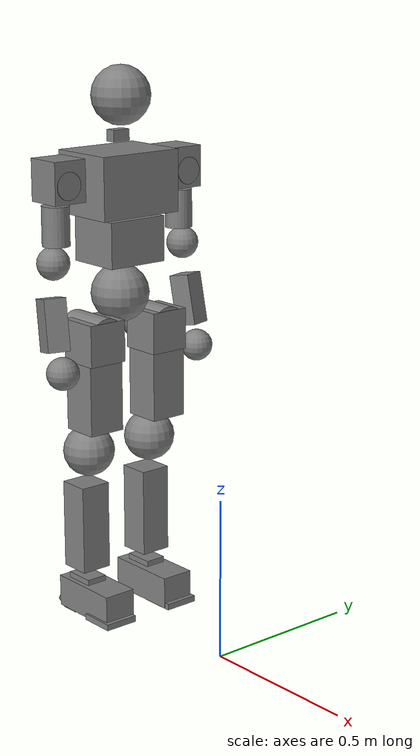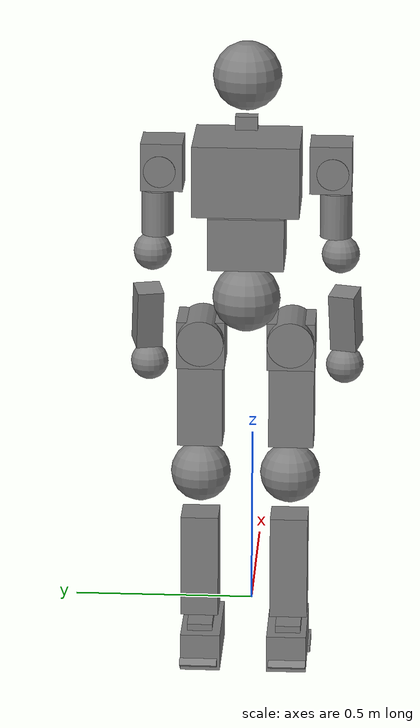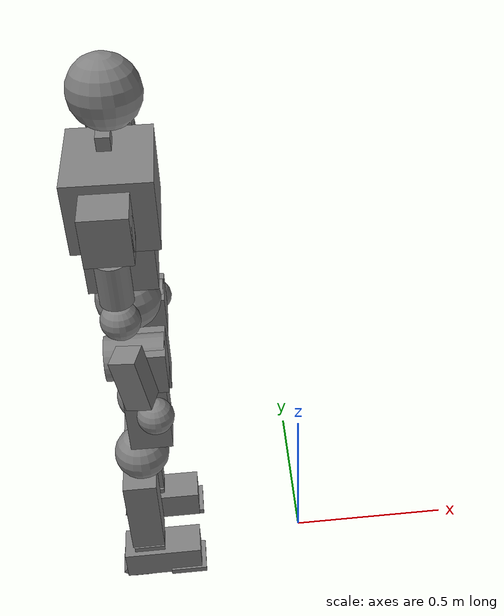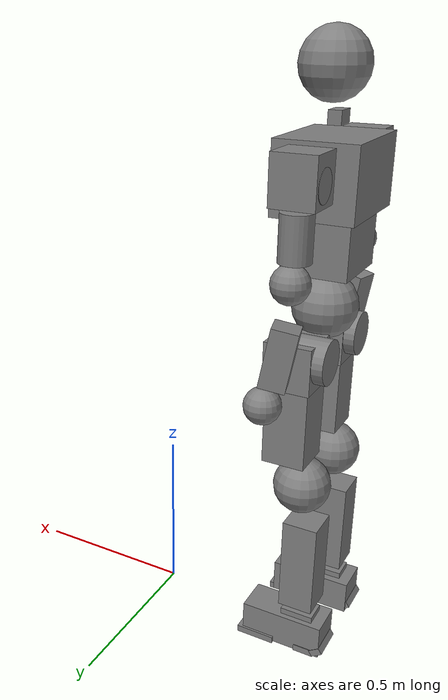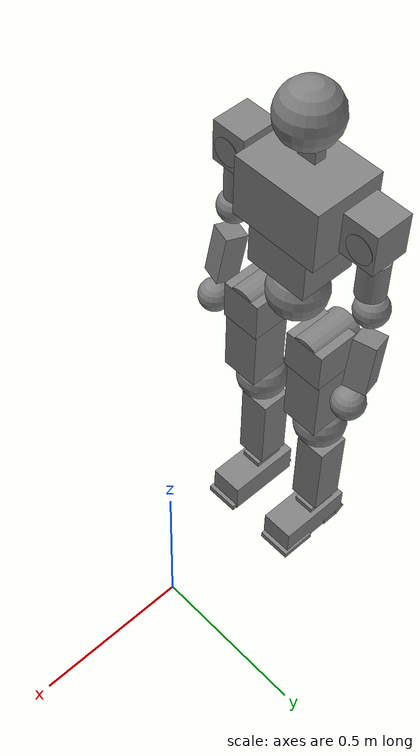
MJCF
<?xml version='1.0' encoding='utf-8'?>
<mujoco model="rek_LINK_BASE_3177">
  <compiler coordinate="local" />
  <option timestep="0.019999992913832199" gravity="0 0 -9.8100004196166992" impratio="1" magnetic="0 0 0" wind="0 0 0" density="0" viscosity="0" o_margin="0" o_solref="0.019999999552965164 1" o_solimp="0.89999997615814209 0.94999998807907104 0.0010000000474974513 0.5 2" integrator="implicitfast" cone="elliptic" jacobian="auto" solver="Newton" iterations="100" tolerance="9.9999999392252903e-09" noslip_iterations="0" noslip_tolerance="9.9999999747524271e-07" ccd_iterations="50" ccd_tolerance="9.9999999747524271e-07">
    <flag constraint="enable" equality="enable" frictionloss="enable" limit="enable" contact="enable" spring="enable" damper="enable" gravity="enable" clampctrl="enable" warmstart="enable" filterparent="enable" actuation="enable" refsafe="enable" override="disable" energy="disable" fwdinv="disable" multiccd="disable" />
  </option>
  <size memory="-1" />
  <custom />
  <worldbody>
    <body name="LINK_BASE_3177" pos="-0.4574199914932251 -0.0028800000436604023 1.0399999711662531" quat="1 0 0 0" gravcomp="0">
      <body name="LINK_HIP_PITCH_L_3427" pos="0 0.079177998006343842 0" quat="1 0 0 0" gravcomp="0">
        <body name="LINK_HIP_ROLL_L_3210" pos="0.0046620001085102558 0.040321998298168182 -0.10751999914646149" quat="1 0 0 0" gravcomp="0">
          <body name="LINK_HIP_YAW_L_3255" pos="0.0094616003334522247 0 -0.080512002110481262" quat="1 0 0 0" gravcomp="0">
            <body name="LINK_KNEE_PITCH_L_3453" pos="-0.037707000970840454 0 -0.28791999816894531" quat="1 0 0 0" gravcomp="0">
              <body name="LINK_ANKLE_PITCH_L_3480" pos="-0.0027167999651283026 0 -0.43867000937461853" quat="1 0 0 0" gravcomp="0">
                <body name="LINK_ANKLE_ROLL_L_3193" pos="0.0011073000496253371 0 -0.037928000092506409" quat="1 0 0 0" gravcomp="0">
                  <body name="LINK_FOOT_L_3022" pos="0 0 0" quat="1 0 0 0" gravcomp="0">
                    <inertial pos="0 0 0" quat="1 0 0 0" mass="0.0010000000474974513" diaginertia="9.999999960041972e-13 9.999999960041972e-13 9.999999960041972e-13" />
                    <geom name="mjgeom_authored_3241" density="0" type="box" size="0.057000000029802322 0.054999999701976776 0.0099999997764825821" pos="0.10000000149011612 0.0016599999507889152 -0.054000001400709152" quat="1 0 0 0" priority="0" contype="1" conaffinity="1" group="0" condim="3" solmix="1" solref="0.019999999552965164 1" solimp="0.89999997615814209 0.94999998807907104 0.0010000000474974513" margin="0" gap="0" friction="1 0.004999999888241291 9.9999997473787516e-05" fluidshape="none" fluidcoef="5 0.25 1.5 1 1" />
                    <geom name="mjgeom_authored_3395" density="0" type="box" size="0.029999999329447746 0.05000000074505806 0.0099999997764825821" pos="-0.05299999937415123 0.0016599999507889152 -0.054000001400709152" quat="1 0 0 0" priority="0" contype="1" conaffinity="1" group="0" condim="3" solmix="1" solref="0.019999999552965164 1" solimp="0.89999997615814209 0.94999998807907104 0.0010000000474974513" margin="0" gap="0" friction="1 0.004999999888241291 9.9999997473787516e-05" fluidshape="none" fluidcoef="5 0.25 1.5 1 1" />
                    <geom name="mjgeom_authored_2931" density="0" type="box" size="0.017999999225139614 0.05000000074505806 0.0099999997764825804" pos="-0.092000000178813934 0.0016599999507889152 -0.045000001788139343" quat="0.9563826269454565 0 0.29211687879495735 0" priority="0" contype="1" conaffinity="1" group="0" condim="3" solmix="1" solref="0.019999999552965164 1" solimp="0.89999997615814209 0.94999998807907104 0.0010000000474974513" margin="0" gap="0" friction="1 0.004999999888241291 9.9999997473787516e-05" fluidshape="none" fluidcoef="5 0.25 1.5 1 1" />
                  </body>
                  <inertial pos="-0.0012873800005763769 -0.0012063799658790231 -0.022955799475312233" quat="0.46213480009613783 0.54236178627193277 0.55963580806756663 0.42318185412489384" mass="1.4943900108337402" diaginertia="0.0070707299746572971 0.0069149001501500607 0.0020277400035411119" />
                  <joint name="joint__J05_ANKLE_ROLL_L_3431" type="hinge" pos="0 0 0" axis="1 0 0" armature="0.035462498664855957" springref="0" springdamper="0 0" damping="0" stiffness="0" solreflimit="0.019999999552965164 1" solimplimit="0.89999997615814209 0.94999998807907104 0.0010000000474974513 0.5 2" solreffriction="0.019999999552965164 1" solimpfriction="0.89999997615814209 0.94999998807907104 0.0010000000474974513 0.5 2" frictionloss="0" limited="true" margin="0" range="-20.001956939697266 9.9981136322021484" ref="0" />
                  <geom name="mjgeom_3424" density="0" type="box" size="0.12126479996368292 0.050415162695571794 0.053187139565125115" pos="0.021552437916398048 -0.0035329684615135193 -0.010564938187599182" quat="3.0908621139995618e-08 3.0908621139995618e-08 -0.70710678118654691 -0.70710678118654691" priority="0" contype="1" conaffinity="2" group="0" condim="3" solmix="1" solref="0.019999999552965164 1" solimp="0.89999997615814209 0.94999998807907104 0.0010000000474974513" margin="0" gap="0" friction="1 0.004999999888241291 9.9999997473787516e-05" fluidshape="none" fluidcoef="5 0.25 1.5 1 1" />
                </body>
                <inertial pos="-3.6779998481506482e-05 0 -0.0088703297078609467" quat="0.70702695848104491 -0.010624499096089172 -0.010624499096089172 0.70702695848104491" mass="0.1442209929227829" diaginertia="8.4929997683502734e-05 6.7876797402277589e-05 3.8243200833676383e-05" />
                <joint name="joint__J04_ANKLE_PITCH_L_3132" type="hinge" pos="0 0 0" axis="-2.2204460492503126e-16 1 0" armature="0.035462498664855957" springref="0" springdamper="0 0" damping="0" stiffness="0" solreflimit="0.019999999552965164 1" solimplimit="0.89999997615814209 0.94999998807907104 0.0010000000474974513 0.5 2" solreffriction="0.019999999552965164 1" solimpfriction="0.89999997615814209 0.94999998807907104 0.0010000000474974513 0.5 2" frictionloss="0" limited="true" margin="0" range="-39.000091552734375 39.000091552734375" ref="0" />
                <geom name="mjgeom_3280" density="0" type="box" size="0.04818098095711322 0.032786364317871637 0.033811354660429067" pos="-0.017856383696198463 -0.00027835369110107422 -0.012690454721450806" quat="3.0908621139995618e-08 3.0908621139995618e-08 -0.70710678118654691 -0.70710678118654691" priority="0" contype="1" conaffinity="2" group="0" condim="3" solmix="1" solref="0.019999999552965164 1" solimp="0.89999997615814209 0.94999998807907104 0.0010000000474974513" margin="0" gap="0" friction="1 0.004999999888241291 9.9999997473787516e-05" fluidshape="none" fluidcoef="5 0.25 1.5 1 1" />
              </body>
              <inertial pos="-0.019744899123907089 0.0013916200259700418 -0.21190699934959412" quat="0.47545387451589743 0.021036093661089075 0.016898896229069427 0.87932674432064351" mass="5.9950299263000488" diaginertia="0.085845403373241425 0.085651099681854248 0.011571500450372696" />
              <joint name="joint__J03_KNEE_PITCH_L_3448" type="hinge" pos="0 0 0" axis="-2.2204460492503126e-16 1 0" armature="0.2427264004945755" springref="0" springdamper="0 0" damping="0" stiffness="0" solreflimit="0.019999999552965164 1" solimplimit="0.89999997615814209 0.94999998807907104 0.0010000000474974513 0.5 2" solreffriction="0.019999999552965164 1" solimpfriction="0.89999997615814209 0.94999998807907104 0.0010000000474974513 0.5 2" frictionloss="0" limited="true" margin="0" range="-14.992415428161621 134.93156433105469" ref="0" />
              <geom name="mjgeom_authored_2981" density="0" type="sphere" size="0.079999998211860657" pos="0 0 0" quat="1 0 0 0" priority="0" contype="1" conaffinity="1" group="0" condim="3" solmix="1" solref="0.019999999552965164 1" solimp="0.89999997615814209 0.94999998807907104 0.0010000000474974513" margin="0" gap="0" friction="1 0.004999999888241291 9.9999997473787516e-05" fluidshape="none" fluidcoef="5 0.25 1.5 1 1" />
              <geom name="mjgeom_authored_3148" density="0" type="box" size="0.05000000074505806 0.05000000074505806 0.14000000059604645" pos="-0.019999999552965164 0 -0.25" quat="1 0 0 0" priority="0" contype="1" conaffinity="1" group="0" condim="3" solmix="1" solref="0.019999999552965164 1" solimp="0.89999997615814209 0.94999998807907104 0.0010000000474974513" margin="0" gap="0" friction="1 0.004999999888241291 9.9999997473787516e-05" fluidshape="none" fluidcoef="5 0.25 1.5 1 1" />
            </body>
            <inertial pos="-0.018298400565981865 0.0023612300865352154 -0.17634700238704681" quat="0.70917573331364325 0.058818773489761889 0.04620788409111385 0.7010527530878391" mass="7.1948199272155762" diaginertia="0.11565600335597992 0.11401999741792679 0.010776599869132042" />
            <joint name="joint__J02_HIP_YAW_L_3403" type="hinge" pos="0 0 0" axis="-2.2204460492503126e-16 0 1" armature="0.044873699545860291" springref="0" springdamper="0 0" damping="0" stiffness="0" solreflimit="0.019999999552965164 1" solimplimit="0.89999997615814209 0.94999998807907104 0.0010000000474974513 0.5 2" solreffriction="0.019999999552965164 1" solimpfriction="0.89999997615814209 0.94999998807907104 0.0010000000474974513 0.5 2" frictionloss="0" limited="true" margin="0" range="-81.500381469726562 206.39543151855469" ref="0" />
            <geom name="mjgeom_authored_3473" density="0" type="box" size="0.059999998658895493 0.059999998658895493 0.10999999940395355" pos="0 0.0020000000949949026 -0.10000000149011612" quat="1 0 0 0" priority="0" contype="1" conaffinity="1" group="0" condim="3" solmix="1" solref="0.019999999552965164 1" solimp="0.89999997615814209 0.94999998807907104 0.0010000000474974513" margin="0" gap="0" friction="1 0.004999999888241291 9.9999997473787516e-05" fluidshape="none" fluidcoef="5 0.25 1.5 1 1" />
          </body>
          <inertial pos="0.037530899047851562 4.9499999477120582e-06 -0.034845501184463501" quat="0.9541172936490564 -3.7655712020968035e-05 0.29943309203351076 -0.00010925703093716646" mass="0.85144197940826416" diaginertia="0.0029199400451034307 0.0025723699945956469 0.0014565000310540199" />
          <joint name="joint__J01_HIP_ROLL_L_3156" type="hinge" pos="0 0 0" axis="1 0 0" armature="0.14110848307609558" springref="0" springdamper="0 0" damping="0" stiffness="0" solreflimit="0.019999999552965164 1" solimplimit="0.89999997615814209 0.94999998807907104 0.0010000000474974513 0.5 2" solreffriction="0.019999999552965164 1" solimpfriction="0.89999997615814209 0.94999998807907104 0.0010000000474974513 0.5 2" frictionloss="0" limited="true" margin="0" range="-61.994033813476562 117.97201538085938" ref="0" />
          <geom name="mjgeom_3095" density="0" type="box" size="0.065747229382395758 0.064645917154848589 0.063737563323229565" pos="0.01204218901693821 3.1255185604095459e-05 -0.00810222327709198" quat="3.0908621139995618e-08 3.0908621139995618e-08 -0.70710678118654691 -0.70710678118654691" priority="0" contype="1" conaffinity="2" group="0" condim="3" solmix="1" solref="0.019999999552965164 1" solimp="0.89999997615814209 0.94999998807907104 0.0010000000474974513" margin="0" gap="0" friction="1 0.004999999888241291 9.9999997473787516e-05" fluidshape="none" fluidcoef="5 0.25 1.5 1 1" />
        </body>
        <inertial pos="0.0061913998797535896 0.039193999022245407 -0.098997600376605988" quat="0.7030482939990742 -0.00094050239532821435 -0.083500140030117881 0.70622230096138028" mass="3.5361900329589844" diaginertia="0.0079573197290301323 0.0071615199558436871 0.0047642500139772892" />
        <joint name="joint__J00_HIP_PITCH_L_3202" type="hinge" pos="0 0 0" axis="-2.8001219565254587e-08 0.96592584692892935 -0.25881896807349691" armature="0.2427264004945755" springref="0" springdamper="0 0" damping="0" stiffness="0" solreflimit="0.019999999552965164 1" solimplimit="0.89999997615814209 0.94999998807907104 0.0010000000474974513 0.5 2" solreffriction="0.019999999552965164 1" solimpfriction="0.89999997615814209 0.94999998807907104 0.0010000000474974513 0.5 2" frictionloss="0" limited="true" margin="0" range="-189.99281311035156 130.00413513183594" ref="0" />
        <geom name="mjgeom_authored_3004" density="0" type="cylinder" size="0.061999998986721025 0.079999998211860643" pos="0 0.039999999105930328 -0.10000000149011612" quat="0.70710678118654757 0 0.70710678118654757 0" priority="0" contype="1" conaffinity="1" group="0" condim="3" solmix="1" solref="0.019999999552965164 1" solimp="0.89999997615814209 0.94999998807907104 0.0010000000474974513" margin="0" gap="0" friction="1 0.004999999888241291 9.9999997473787516e-05" fluidshape="none" fluidcoef="5 0.25 1.5 1 1" />
      </body>
      <body name="LINK_HIP_PITCH_R_3313" pos="0 -0.079177998006343842 0" quat="1 0 0 0" gravcomp="0">
        <body name="LINK_HIP_ROLL_R_3154" pos="0.0046620001085102558 -0.040321998298168182 -0.10751999914646149" quat="1 0 0 0" gravcomp="0">
          <body name="LINK_HIP_YAW_R_3008" pos="0.0094616003334522247 0 -0.080512002110481262" quat="1 0 0 0" gravcomp="0">
            <body name="LINK_KNEE_PITCH_R_3054" pos="-0.037707000970840454 0 -0.28791999816894531" quat="1 0 0 0" gravcomp="0">
              <body name="LINK_ANKLE_PITCH_R_3327" pos="-0.0027167999651283026 0 -0.43867000937461853" quat="1 0 0 0" gravcomp="0">
                <body name="LINK_ANKLE_ROLL_R_3212" pos="0.0011073000496253371 0 -0.037928000092506409" quat="1 0 0 0" gravcomp="0">
                  <body name="LINK_FOOT_R_2916" pos="0 0 0" quat="1 0 0 0" gravcomp="0">
                    <inertial pos="0 0 0" quat="1 0 0 0" mass="0.0010000000474974513" diaginertia="9.999999960041972e-13 9.999999960041972e-13 9.999999960041972e-13" />
                    <geom name="mjgeom_authored_3121" density="0" type="box" size="0.057000000029802322 0.054999999701976776 0.0099999997764825821" pos="0.10000000149011612 -0.0016599999507889152 -0.054000001400709152" quat="1 0 0 0" priority="0" contype="1" conaffinity="1" group="0" condim="3" solmix="1" solref="0.019999999552965164 1" solimp="0.89999997615814209 0.94999998807907104 0.0010000000474974513" margin="0" gap="0" friction="1 0.004999999888241291 9.9999997473787516e-05" fluidshape="none" fluidcoef="5 0.25 1.5 1 1" />
                    <geom name="mjgeom_authored_3287" density="0" type="box" size="0.029999999329447746 0.05000000074505806 0.0099999997764825821" pos="-0.05299999937415123 0.0016599999507889152 -0.054000001400709152" quat="1 0 0 0" priority="0" contype="1" conaffinity="1" group="0" condim="3" solmix="1" solref="0.019999999552965164 1" solimp="0.89999997615814209 0.94999998807907104 0.0010000000474974513" margin="0" gap="0" friction="1 0.004999999888241291 9.9999997473787516e-05" fluidshape="none" fluidcoef="5 0.25 1.5 1 1" />
                    <geom name="mjgeom_authored_3014" density="0" type="box" size="0.017999999225139614 0.05000000074505806 0.0099999997764825804" pos="-0.092000000178813934 0.0016599999507889152 -0.045000001788139343" quat="0.9563826269454565 0 0.29211687879495735 0" priority="0" contype="1" conaffinity="1" group="0" condim="3" solmix="1" solref="0.019999999552965164 1" solimp="0.89999997615814209 0.94999998807907104 0.0010000000474974513" margin="0" gap="0" friction="1 0.004999999888241291 9.9999997473787516e-05" fluidshape="none" fluidcoef="5 0.25 1.5 1 1" />
                  </body>
                  <inertial pos="-0.0012873800005763769 0.0012063799658790231 -0.022955799475312233" quat="0.42318185412489384 0.55963580806756663 0.54236178627193277 0.46213480009613783" mass="1.4943900108337402" diaginertia="0.0070707299746572971 0.0069149001501500607 0.0020277400035411119" />
                  <joint name="joint__J11_ANKLE_ROLL_R_3208" type="hinge" pos="0 0 0" axis="1 0 0" armature="0.035462498664855957" springref="0" springdamper="0 0" damping="0" stiffness="0" solreflimit="0.019999999552965164 1" solimplimit="0.89999997615814209 0.94999998807907104 0.0010000000474974513 0.5 2" solreffriction="0.019999999552965164 1" solimpfriction="0.89999997615814209 0.94999998807907104 0.0010000000474974513 0.5 2" frictionloss="0" limited="true" margin="0" range="-9.9981136322021484 20.001956939697266" ref="0" />
                  <geom name="mjgeom_3140" density="0" type="box" size="0.12126479996368292 0.050415162695571794 0.053187145385891206" pos="0.021552443504333496 0.003597162663936615 -0.010564938187599182" quat="3.0908621139995618e-08 3.0908621139995618e-08 -0.70710678118654691 -0.70710678118654691" priority="0" contype="1" conaffinity="2" group="0" condim="3" solmix="1" solref="0.019999999552965164 1" solimp="0.89999997615814209 0.94999998807907104 0.0010000000474974513" margin="0" gap="0" friction="1 0.004999999888241291 9.9999997473787516e-05" fluidshape="none" fluidcoef="5 0.25 1.5 1 1" />
                </body>
                <inertial pos="-3.6779998481506482e-05 0 -0.0088703297078609467" quat="0.70702695848104491 -0.010624499096089172 -0.010624499096089172 0.70702695848104491" mass="0.1442209929227829" diaginertia="8.4929997683502734e-05 6.7876797402277589e-05 3.8243200833676383e-05" />
                <joint name="joint__J10_ANKLE_PITCH_R_3006" type="hinge" pos="0 0 0" axis="-2.2204460492503126e-16 1 0" armature="0.035462498664855957" springref="0" springdamper="0 0" damping="0" stiffness="0" solreflimit="0.019999999552965164 1" solimplimit="0.89999997615814209 0.94999998807907104 0.0010000000474974513 0.5 2" solreffriction="0.019999999552965164 1" solimpfriction="0.89999997615814209 0.94999998807907104 0.0010000000474974513 0.5 2" frictionloss="0" limited="true" margin="0" range="-39.000091552734375 39.000091552734375" ref="0" />
                <geom name="mjgeom_3102" density="0" type="box" size="0.04818098095711322 0.032786364317871637 0.033811354660429067" pos="-0.017856383696198463 0.00034254789352416992 -0.012690454721450806" quat="3.0908621139995618e-08 3.0908621139995618e-08 -0.70710678118654691 -0.70710678118654691" priority="0" contype="1" conaffinity="2" group="0" condim="3" solmix="1" solref="0.019999999552965164 1" solimp="0.89999997615814209 0.94999998807907104 0.0010000000474974513" margin="0" gap="0" friction="1 0.004999999888241291 9.9999997473787516e-05" fluidshape="none" fluidcoef="5 0.25 1.5 1 1" />
              </body>
              <inertial pos="-0.019744899123907089 -0.0013916200259700418 -0.21190699934959412" quat="0.87932674432064351 0.016898896229069427 0.021036093661089075 0.47545387451589743" mass="5.9950299263000488" diaginertia="0.085845403373241425 0.085651099681854248 0.011571500450372696" />
              <joint name="joint__J09_KNEE_PITCH_R_3252" type="hinge" pos="0 0 0" axis="-2.2204460492503126e-16 1 0" armature="0.2427264004945755" springref="0" springdamper="0 0" damping="0" stiffness="0" solreflimit="0.019999999552965164 1" solimplimit="0.89999997615814209 0.94999998807907104 0.0010000000474974513 0.5 2" solreffriction="0.019999999552965164 1" solimpfriction="0.89999997615814209 0.94999998807907104 0.0010000000474974513 0.5 2" frictionloss="0" limited="true" margin="0" range="-14.992415428161621 134.93156433105469" ref="0" />
              <geom name="mjgeom_authored_3088" density="0" type="sphere" size="0.079999998211860657" pos="0 0 0" quat="1 0 0 0" priority="0" contype="1" conaffinity="1" group="0" condim="3" solmix="1" solref="0.019999999552965164 1" solimp="0.89999997615814209 0.94999998807907104 0.0010000000474974513" margin="0" gap="0" friction="1 0.004999999888241291 9.9999997473787516e-05" fluidshape="none" fluidcoef="5 0.25 1.5 1 1" />
              <geom name="mjgeom_authored_3029" density="0" type="box" size="0.05000000074505806 0.05000000074505806 0.14000000059604645" pos="-0.019999999552965164 0 -0.25" quat="1 0 0 0" priority="0" contype="1" conaffinity="1" group="0" condim="3" solmix="1" solref="0.019999999552965164 1" solimp="0.89999997615814209 0.94999998807907104 0.0010000000474974513" margin="0" gap="0" friction="1 0.004999999888241291 9.9999997473787516e-05" fluidshape="none" fluidcoef="5 0.25 1.5 1 1" />
            </body>
            <inertial pos="-0.018298400565981865 -0.0023612300865352154 -0.17634700238704681" quat="0.7010527530878391 0.04620788409111385 0.058818773489761889 0.70917573331364325" mass="7.1948199272155762" diaginertia="0.11565600335597992 0.11401999741792679 0.010776599869132042" />
            <joint name="joint__J08_HIP_YAW_R_3013" type="hinge" pos="0 0 0" axis="-2.2204460492503126e-16 0 1" armature="0.044873699545860291" springref="0" springdamper="0 0" damping="0" stiffness="0" solreflimit="0.019999999552965164 1" solimplimit="0.89999997615814209 0.94999998807907104 0.0010000000474974513 0.5 2" solreffriction="0.019999999552965164 1" solimpfriction="0.89999997615814209 0.94999998807907104 0.0010000000474974513 0.5 2" frictionloss="0" limited="true" margin="0" range="-206.39543151855469 81.500381469726562" ref="0" />
            <geom name="mjgeom_authored_2989" density="0" type="box" size="0.059999998658895493 0.059999998658895493 0.10999999940395355" pos="0 -0.0020000000949949026 -0.10000000149011612" quat="1 0 0 0" priority="0" contype="1" conaffinity="1" group="0" condim="3" solmix="1" solref="0.019999999552965164 1" solimp="0.89999997615814209 0.94999998807907104 0.0010000000474974513" margin="0" gap="0" friction="1 0.004999999888241291 9.9999997473787516e-05" fluidshape="none" fluidcoef="5 0.25 1.5 1 1" />
          </body>
          <inertial pos="0.037530899047851562 -4.9499999477120582e-06 -0.034845501184463501" quat="0.9541172936490564 3.7655712020968035e-05 0.29943309203351076 0.00010925703093716646" mass="0.85144197940826416" diaginertia="0.0029199400451034307 0.0025723699945956469 0.0014565000310540199" />
          <joint name="joint__J07_HIP_ROLL_R_2962" type="hinge" pos="0 0 0" axis="1 0 0" armature="0.14110848307609558" springref="0" springdamper="0 0" damping="0" stiffness="0" solreflimit="0.019999999552965164 1" solimplimit="0.89999997615814209 0.94999998807907104 0.0010000000474974513 0.5 2" solreffriction="0.019999999552965164 1" solimpfriction="0.89999997615814209 0.94999998807907104 0.0010000000474974513 0.5 2" frictionloss="0" limited="true" margin="0" range="-117.97201538085938 61.994033813476562" ref="0" />
          <geom name="mjgeom_3326" density="0" type="box" size="0.065747229382395758 0.064645917154848589 0.063737563323229565" pos="0.01204218901693821 3.2916665077209473e-05 -0.00810222327709198" quat="3.0908621139995618e-08 3.0908621139995618e-08 -0.70710678118654691 -0.70710678118654691" priority="0" contype="1" conaffinity="2" group="0" condim="3" solmix="1" solref="0.019999999552965164 1" solimp="0.89999997615814209 0.94999998807907104 0.0010000000474974513" margin="0" gap="0" friction="1 0.004999999888241291 9.9999997473787516e-05" fluidshape="none" fluidcoef="5 0.25 1.5 1 1" />
        </body>
        <inertial pos="0.0061913998797535896 -0.039193999022245407 -0.098997600376605988" quat="0.70622230096138028 -0.083500140030117881 -0.00094050239532821435 0.7030482939990742" mass="3.5361900329589844" diaginertia="0.0079573197290301323 0.0071615199558436871 0.0047642500139772892" />
        <joint name="joint__J06_HIP_PITCH_R_3167" type="hinge" pos="0 0 0" axis="-2.8001219565254587e-08 0.96592584692892935 0.25881896807349691" armature="0.2427264004945755" springref="0" springdamper="0 0" damping="0" stiffness="0" solreflimit="0.019999999552965164 1" solimplimit="0.89999997615814209 0.94999998807907104 0.0010000000474974513 0.5 2" solreffriction="0.019999999552965164 1" solimpfriction="0.89999997615814209 0.94999998807907104 0.0010000000474974513 0.5 2" frictionloss="0" limited="true" margin="0" range="-189.99281311035156 130.00413513183594" ref="0" />
        <geom name="mjgeom_authored_3333" density="0" type="cylinder" size="0.061999998986721025 0.079999998211860643" pos="0 -0.039999999105930328 -0.10000000149011612" quat="0.70710678118654757 0 0.70710678118654757 0" priority="0" contype="1" conaffinity="1" group="0" condim="3" solmix="1" solref="0.019999999552965164 1" solimp="0.89999997615814209 0.94999998807907104 0.0010000000474974513" margin="0" gap="0" friction="1 0.004999999888241291 9.9999997473787516e-05" fluidshape="none" fluidcoef="5 0.25 1.5 1 1" />
      </body>
      <body name="LINK_WAIST_YAW_3445" pos="0 0 0.10384000092744827" quat="1 0 0 0" gravcomp="0">
        <body name="LINK_HEAD_PITCH_3361" pos="-0.011300000362098217 0 0.38604000210762024" quat="1 0 0 0" gravcomp="0">
          <body name="LINK_HEAD_YAW_3342" pos="0 0 0.040199000388383865" quat="1 0 0 0" gravcomp="0">
            <inertial pos="0.018132599070668221 4.9199998102267273e-06 0.092894397675991058" quat="0.33815790055348249 0.6210657559784406 0.62132277119038937 0.33746788742706207" mass="1.7237700223922729" diaginertia="0.0084851300343871117 0.0082612903788685799 0.0065395999699831009" />
            <joint name="joint__J24_HEAD_YAW_3294" type="hinge" pos="0 0 0" axis="-2.2204460492503126e-16 0 1" armature="0.0067162499763071537" springref="0" springdamper="0 0" damping="0" stiffness="0" solreflimit="0.019999999552965164 1" solimplimit="0.89999997615814209 0.94999998807907104 0.0010000000474974513 0.5 2" solreffriction="0.019999999552965164 1" solimpfriction="0.89999997615814209 0.94999998807907104 0.0010000000474974513 0.5 2" frictionloss="0" limited="true" margin="0" range="-70.01544189453125 70.01544189453125" ref="0" />
            <geom name="mjgeom_authored_3125" density="0" type="sphere" size="0.090000003576278687" pos="0.017999999225139618 0 0.079999998211860657" quat="1 0 0 0" priority="0" contype="1" conaffinity="1" group="0" condim="3" solmix="1" solref="0.019999999552965164 1" solimp="0.89999997615814209 0.94999998807907104 0.0010000000474974513" margin="0" gap="0" friction="1 0.004999999888241291 9.9999997473787516e-05" fluidshape="none" fluidcoef="5 0.25 1.5 1 1" />
          </body>
          <inertial pos="0.00012688999413512647 0.00010014000145019963 0.067295297980308533" quat="0.99904520385077322 -0.043609304079558653 0.0015927501173754501 0.002091030254953434" mass="0.70796602964401245" diaginertia="0.00066047400468960404 0.00056427798699587584 0.00045508900075219572" />
          <joint name="joint__J23_HEAD_PITCH_3223" type="hinge" pos="0 0 0" axis="-2.2204460492503126e-16 1 0" armature="0.0067162499763071537" springref="0" springdamper="0 0" damping="0" stiffness="0" solreflimit="0.019999999552965164 1" solimplimit="0.89999997615814209 0.94999998807907104 0.0010000000474974513 0.5 2" solreffriction="0.019999999552965164 1" solimpfriction="0.89999997615814209 0.94999998807907104 0.0010000000474974513 0.5 2" frictionloss="0" limited="true" margin="0" range="-29.965692520141602 29.965692520141602" ref="0" />
          <geom name="mjgeom_2892" density="0" type="box" size="0.017814448801800612 0.017772120190784339 0.029249984072521332" pos="8.4945932030677795e-06 0.0010320888832211494 4.6819448471069336e-05" quat="3.0908621139995618e-08 3.0908621139995618e-08 -0.70710678118654691 -0.70710678118654691" priority="0" contype="1" conaffinity="2" group="0" condim="3" solmix="1" solref="0.019999999552965164 1" solimp="0.89999997615814209 0.94999998807907104 0.0010000000474974513" margin="0" gap="0" friction="1 0.004999999888241291 9.9999997473787516e-05" fluidshape="none" fluidcoef="5 0.25 1.5 1 1" />
        </body>
        <body name="LINK_SHOULDER_PITCH_L_3003" pos="-0.010999999940395355 0.1630299985408783 0.27889001369476318" quat="1 0 0 0" gravcomp="0">
          <body name="LINK_SHOULDER_ROLL_L_3396" pos="0 0.062532998621463776 -0.015455000102519989" quat="1 0 0 0" gravcomp="0">
            <body name="LINK_SHOULDER_YAW_L_3103" pos="3.4601998777361587e-05 0.0085246004164218903 -0.082712002098560333" quat="1 0 0 0" gravcomp="0">
              <body name="LINK_ELBOW_PITCH_L_3303" pos="0.0019251999910920858 0.013597000390291214 -0.15074999630451202" quat="1 0 0 0" gravcomp="0">
                <body name="LINK_ELBOW_YAW_L_3350" pos="-0.0022090999409556389 0.0094362003728747368 -0.13181999325752258" quat="1 0 0 0" gravcomp="0">
                  <body name="LINK_WRIST_END_L_2899" pos="0.029435999691486359 0.012485500425100327 -0.13222150504589081" quat="1 0 0 0" gravcomp="0">
                    <inertial pos="0 0 0" quat="1 0 0 0" mass="0.0010000000474974513" diaginertia="9.999999960041972e-13 9.999999960041972e-13 9.999999960041972e-13" />
                    <geom name="mjgeom_authored_3435" density="0" type="sphere" size="0.05000000074505806" pos="0.026000000536441803 -0.008999999612569809 -0.059999998658895493" quat="1 0 0 0" priority="0" contype="1" conaffinity="1" group="0" condim="3" solmix="1" solref="0.019999999552965164 1" solimp="0.89999997615814209 0.94999998807907104 0.0010000000474974513" margin="0" gap="0" friction="1 0.004999999888241291 9.9999997473787516e-05" fluidshape="none" fluidcoef="5 0.25 1.5 1 1" />
                  </body>
                  <inertial pos="0.013009400106966496 0.0044797500595450401 -0.05843840166926384" quat="0.70249378018499253 -0.045093483797508487 -0.10659295965016564 0.70221578412438257" mass="1.0788199901580811" diaginertia="0.0021501700393855572 0.0020166700705885887 0.00085407297592610121" />
                  <joint name="joint__J17_ELBOW_YAW_L_2903" type="hinge" pos="0 0 0" axis="-0.2164390775440248 -0.069802836083640601 0.97379756098820269" armature="0.0067162499763071537" springref="0" springdamper="0 0" damping="0" stiffness="0" solreflimit="0.019999999552965164 1" solimplimit="0.89999997615814209 0.94999998807907104 0.0010000000474974513 0.5 2" solreffriction="0.019999999552965164 1" solimpfriction="0.89999997615814209 0.94999998807907104 0.0010000000474974513 0.5 2" frictionloss="0" limited="true" margin="0" range="-150.00035095214844 150.00035095214844" ref="0" />
                  <geom name="mjgeom_authored_3317" density="0" type="box" size="0.035000000149011612 0.035000000149011612 0.079999998211860657" pos="0.014000000432133675 0.004999999888241291 -0.05000000074505806" quat="0.98763760366485664 0.010995965720700156 -0.086968088792974477 0.12995231470314833" priority="0" contype="1" conaffinity="1" group="0" condim="3" solmix="1" solref="0.019999999552965164 1" solimp="0.89999997615814209 0.94999998807907104 0.0010000000474974513" margin="0" gap="0" friction="1 0.004999999888241291 9.9999997473787516e-05" fluidshape="none" fluidcoef="5 0.25 1.5 1 1" />
                </body>
                <inertial pos="-0.0088349701836705208 0.0029520299285650253 -0.073333397507667542" quat="0.99291108459622723 0.086900404203694104 0.011758301220093704 0.080234906291438007" mass="1.1952699422836304" diaginertia="0.0031966699752956629 0.0031064599752426147 0.0012679300270974636" />
                <joint name="joint__J16_ELBOW_PITCH_L_3166" type="hinge" pos="0 0 0" axis="-3.4745579968742391e-08 0.99744080865796003 0.071497085421391382" armature="0.035462498664855957" springref="0" springdamper="0 0" damping="0" stiffness="0" solreflimit="0.019999999552965164 1" solimplimit="0.89999997615814209 0.94999998807907104 0.0010000000474974513 0.5 2" solreffriction="0.019999999552965164 1" solimpfriction="0.89999997615814209 0.94999998807907104 0.0010000000474974513 0.5 2" frictionloss="0" limited="true" margin="0" range="-130.9781494140625 15.011493682861328" ref="0" />
                <geom name="mjgeom_authored_3131" density="0" type="sphere" size="0.05000000074505806" pos="0 0 0" quat="1 0 0 0" priority="0" contype="1" conaffinity="1" group="0" condim="3" solmix="1" solref="0.019999999552965164 1" solimp="0.89999997615814209 0.94999998807907104 0.0010000000474974513" margin="0" gap="0" friction="1 0.004999999888241291 9.9999997473787516e-05" fluidshape="none" fluidcoef="5 0.25 1.5 1 1" />
              </body>
              <inertial pos="0.00062214001081883907 0.0055498098954558372 -0.08980560302734375" quat="0.70639874657327728 0.016014593710949585 -0.024756989022396956 0.70719971374606838" mass="2.5520200729370117" diaginertia="0.0099796103313565254 0.0098341898992657661 0.0011442500399425626" />
              <joint name="joint__J15_SHOULDER_YAW_L_3493" type="hinge" pos="0 0 0" axis="-1.1882354833403494e-07 -0.07149707941006149 0.9974408090888488" armature="0.035462498664855957" springref="0" springdamper="0 0" damping="0" stiffness="0" solreflimit="0.019999999552965164 1" solimplimit="0.89999997615814209 0.94999998807907104 0.0010000000474974513 0.5 2" solreffriction="0.019999999552965164 1" solimpfriction="0.89999997615814209 0.94999998807907104 0.0010000000474974513 0.5 2" frictionloss="0" limited="true" margin="0" range="-150.00035095214844 150.00035095214844" ref="0" />
              <geom name="mjgeom_authored_3471" density="0" type="cylinder" size="0.041999999433755875 0.059999998658895493" pos="0 0 -0.039999999105930328" quat="1 0 0 0" priority="0" contype="1" conaffinity="1" group="0" condim="3" solmix="1" solref="0.019999999552965164 1" solimp="0.89999997615814209 0.94999998807907104 0.0010000000474974513" margin="0" gap="0" friction="1 0.004999999888241291 9.9999997473787516e-05" fluidshape="none" fluidcoef="5 0.25 1.5 1 1" />
            </body>
            <inertial pos="-0.005571919959038496 0.0044665900059044361 -0.027129299938678741" quat="0.69930401648712981 -0.095837507317864903 -0.19685601406671516 0.6804680554161463" mass="0.68289297819137573" diaginertia="0.0021681899670511484 0.0015994500136002898 0.0014132000505924225" />
            <joint name="joint__J14_SHOULDER_ROLL_L_3297" type="hinge" pos="0 0 0" axis="1 0 0" armature="0.035462498664855957" springref="0" springdamper="0 0" damping="0" stiffness="0" solreflimit="0.019999999552965164 1" solimplimit="0.89999997615814209 0.94999998807907104 0.0010000000474974513 0.5 2" solreffriction="0.019999999552965164 1" solimpfriction="0.89999997615814209 0.94999998807907104 0.0010000000474974513 0.5 2" frictionloss="0" limited="true" margin="0" range="-22.001579284667969 139.97360229492188" ref="0" />
            <geom name="mjgeom_authored_2947" density="0" type="cylinder" size="0.041999999433755868 0.059999998658895479" pos="0 0 0" quat="0.70710678118654757 0 0.70710678118654757 0" priority="0" contype="1" conaffinity="1" group="0" condim="3" solmix="1" solref="0.019999999552965164 1" solimp="0.89999997615814209 0.94999998807907104 0.0010000000474974513" margin="0" gap="0" friction="1 0.004999999888241291 9.9999997473787516e-05" fluidshape="none" fluidcoef="5 0.25 1.5 1 1" />
          </body>
          <inertial pos="-0.0061545697972178459 0.052841801196336746 -0.012487100437283516" quat="0.83517465121690471 0.54769877707969339 0.028681288424544947 0.041069882449773221" mass="1.7688299417495728" diaginertia="0.0024097799323499203 0.0021395098883658648 0.0013071800349280238" />
          <joint name="joint__J13_SHOULDER_PITCH_L_3494" type="hinge" pos="0 0 0" axis="-3.6477507681098587e-09 0.99677888126457848 0.080198889424575745" armature="0.035462498664855957" springref="0" springdamper="0 0" damping="0" stiffness="0" solreflimit="0.019999999552965164 1" solimplimit="0.89999997615814209 0.94999998807907104 0.0010000000474974513 0.5 2" solreffriction="0.019999999552965164 1" solimpfriction="0.89999997615814209 0.94999998807907104 0.0010000000474974513 0.5 2" frictionloss="0" limited="true" margin="0" range="-169.99658203125 160.02711486816406" ref="0" />
          <geom name="mjgeom_2887" density="0" type="box" size="0.05838079960085453 0.063759268959984197 0.054950080811977393" pos="-0.00024313293397426605 0.057111412286758423 -0.0047956705093383789" quat="3.0908621139995618e-08 3.0908621139995618e-08 -0.70710678118654691 -0.70710678118654691" priority="0" contype="1" conaffinity="2" group="0" condim="3" solmix="1" solref="0.019999999552965164 1" solimp="0.89999997615814209 0.94999998807907104 0.0010000000474974513" margin="0" gap="0" friction="1 0.004999999888241291 9.9999997473787516e-05" fluidshape="none" fluidcoef="5 0.25 1.5 1 1" />
        </body>
        <body name="LINK_SHOULDER_PITCH_R_2901" pos="-0.010999999940395355 -0.1630299985408783 0.27889001369476318" quat="1 0 0 0" gravcomp="0">
          <body name="LINK_SHOULDER_ROLL_R_3243" pos="0 -0.062532998621463776 -0.015455000102519989" quat="1 0 0 0" gravcomp="0">
            <body name="LINK_SHOULDER_YAW_R_3325" pos="3.4601998777361587e-05 -0.0085246004164218903 -0.082712002098560333" quat="1 0 0 0" gravcomp="0">
              <body name="LINK_ELBOW_PITCH_R_3240" pos="0.0019251999910920858 -0.013597000390291214 -0.15074999630451202" quat="1 0 0 0" gravcomp="0">
                <body name="LINK_ELBOW_YAW_R_3286" pos="-0.0022090999409556389 -0.0094362003728747368 -0.13181999325752258" quat="1 0 0 0" gravcomp="0">
                  <body name="LINK_WRIST_END_R_3185" pos="0.029435999691486359 -0.012485500425100327 -0.13222150504589081" quat="1 0 0 0" gravcomp="0">
                    <inertial pos="0 0 0" quat="1 0 0 0" mass="0.0010000000474974513" diaginertia="9.999999960041972e-13 9.999999960041972e-13 9.999999960041972e-13" />
                    <geom name="mjgeom_authored_3197" density="0" type="sphere" size="0.05000000074505806" pos="0.026000000536441803 0.008999999612569809 -0.059999998658895493" quat="1 0 0 0" priority="0" contype="1" conaffinity="1" group="0" condim="3" solmix="1" solref="0.019999999552965164 1" solimp="0.89999997615814209 0.94999998807907104 0.0010000000474974513" margin="0" gap="0" friction="1 0.004999999888241291 9.9999997473787516e-05" fluidshape="none" fluidcoef="5 0.25 1.5 1 1" />
                  </body>
                  <inertial pos="0.013009400106966496 -0.0044797500595450401 -0.05843840166926384" quat="0.70221578412438257 -0.10659295965016564 -0.045093483797508487 0.70249378018499253" mass="1.0788199901580811" diaginertia="0.0021501700393855572 0.0020166700705885887 0.00085407297592610121" />
                  <joint name="joint__J22_ELBOW_YAW_R_3481" type="hinge" pos="0 0 0" axis="-0.2164390775440248 0.069802836083640601 0.97379756098820269" armature="0.0067162499763071537" springref="0" springdamper="0 0" damping="0" stiffness="0" solreflimit="0.019999999552965164 1" solimplimit="0.89999997615814209 0.94999998807907104 0.0010000000474974513 0.5 2" solreffriction="0.019999999552965164 1" solimpfriction="0.89999997615814209 0.94999998807907104 0.0010000000474974513 0.5 2" frictionloss="0" limited="true" margin="0" range="-150.00035095214844 150.00035095214844" ref="0" />
                  <geom name="mjgeom_authored_3344" density="0" type="box" size="0.035000000149011612 0.035000000149011612 0.079999998211860657" pos="0.014000000432133675 -0.004999999888241291 -0.05000000074505806" quat="0.98763760366485664 -0.010995965720700156 -0.086968088792974477 -0.12995231470314833" priority="0" contype="1" conaffinity="1" group="0" condim="3" solmix="1" solref="0.019999999552965164 1" solimp="0.89999997615814209 0.94999998807907104 0.0010000000474974513" margin="0" gap="0" friction="1 0.004999999888241291 9.9999997473787516e-05" fluidshape="none" fluidcoef="5 0.25 1.5 1 1" />
                </body>
                <inertial pos="-0.0088349701836705208 -0.0029520299285650253 -0.073333397507667542" quat="0.99291108459622723 -0.086900404203694104 0.011758301220093704 -0.080234906291438007" mass="1.1952699422836304" diaginertia="0.0031966699752956629 0.0031064599752426147 0.0012679300270974636" />
                <joint name="joint__J21_ELBOW_PITCH_R_3018" type="hinge" pos="0 0 0" axis="-3.4745579968742391e-08 0.99744080865796003 -0.071497085421391382" armature="0.035462498664855957" springref="0" springdamper="0 0" damping="0" stiffness="0" solreflimit="0.019999999552965164 1" solimplimit="0.89999997615814209 0.94999998807907104 0.0010000000474974513 0.5 2" solreffriction="0.019999999552965164 1" solimpfriction="0.89999997615814209 0.94999998807907104 0.0010000000474974513 0.5 2" frictionloss="0" limited="true" margin="0" range="-130.9781494140625 15.011493682861328" ref="0" />
                <geom name="mjgeom_authored_2939" density="0" type="sphere" size="0.05000000074505806" pos="0 0 0" quat="1 0 0 0" priority="0" contype="1" conaffinity="1" group="0" condim="3" solmix="1" solref="0.019999999552965164 1" solimp="0.89999997615814209 0.94999998807907104 0.0010000000474974513" margin="0" gap="0" friction="1 0.004999999888241291 9.9999997473787516e-05" fluidshape="none" fluidcoef="5 0.25 1.5 1 1" />
              </body>
              <inertial pos="0.00062214001081883907 -0.0055498098954558372 -0.08980560302734375" quat="0.70719971374606838 -0.024756989022396956 0.016014593710949585 0.70639874657327728" mass="2.5520200729370117" diaginertia="0.0099796103313565254 0.0098341898992657661 0.0011442500399425626" />
              <joint name="joint__J20_SHOULDER_YAW_R_3028" type="hinge" pos="0 0 0" axis="-1.1882354833403494e-07 0.07149707941006149 0.9974408090888488" armature="0.035462498664855957" springref="0" springdamper="0 0" damping="0" stiffness="0" solreflimit="0.019999999552965164 1" solimplimit="0.89999997615814209 0.94999998807907104 0.0010000000474974513 0.5 2" solreffriction="0.019999999552965164 1" solimpfriction="0.89999997615814209 0.94999998807907104 0.0010000000474974513 0.5 2" frictionloss="0" limited="true" margin="0" range="-150.00035095214844 150.00035095214844" ref="0" />
              <geom name="mjgeom_authored_3075" density="0" type="cylinder" size="0.041999999433755875 0.059999998658895493" pos="0 0 -0.039999999105930328" quat="1 0 0 0" priority="0" contype="1" conaffinity="1" group="0" condim="3" solmix="1" solref="0.019999999552965164 1" solimp="0.89999997615814209 0.94999998807907104 0.0010000000474974513" margin="0" gap="0" friction="1 0.004999999888241291 9.9999997473787516e-05" fluidshape="none" fluidcoef="5 0.25 1.5 1 1" />
            </body>
            <inertial pos="-0.005571919959038496 -0.0044665900059044361 -0.027129299938678741" quat="0.6804680554161463 -0.19685601406671516 -0.095837507317864903 0.69930401648712981" mass="0.68289297819137573" diaginertia="0.0021681899670511484 0.0015994500136002898 0.0014132000505924225" />
            <joint name="joint__J19_SHOULDER_ROLL_R_3116" type="hinge" pos="0 0 0" axis="1 0 0" armature="0.035462498664855957" springref="0" springdamper="0 0" damping="0" stiffness="0" solreflimit="0.019999999552965164 1" solimplimit="0.89999997615814209 0.94999998807907104 0.0010000000474974513 0.5 2" solreffriction="0.019999999552965164 1" solimpfriction="0.89999997615814209 0.94999998807907104 0.0010000000474974513 0.5 2" frictionloss="0" limited="true" margin="0" range="-139.97360229492188 22.001579284667969" ref="0" />
            <geom name="mjgeom_authored_3442" density="0" type="cylinder" size="0.041999999433755868 0.059999998658895479" pos="0 0 0" quat="0.70710678118654757 0 0.70710678118654757 0" priority="0" contype="1" conaffinity="1" group="0" condim="3" solmix="1" solref="0.019999999552965164 1" solimp="0.89999997615814209 0.94999998807907104 0.0010000000474974513" margin="0" gap="0" friction="1 0.004999999888241291 9.9999997473787516e-05" fluidshape="none" fluidcoef="5 0.25 1.5 1 1" />
          </body>
          <inertial pos="-0.0061545697972178459 -0.052841801196336746 -0.012487100437283516" quat="0.54769877707969339 0.83517465121690471 -0.041069882449773221 -0.028681288424544947" mass="1.7688299417495728" diaginertia="0.0024097799323499203 0.0021395098883658648 0.0013071800349280238" />
          <joint name="joint__J18_SHOULDER_PITCH_R_2922" type="hinge" pos="0 0 0" axis="-3.6477507681098587e-09 0.99677888126457848 -0.080198889424575745" armature="0.035462498664855957" springref="0" springdamper="0 0" damping="0" stiffness="0" solreflimit="0.019999999552965164 1" solimplimit="0.89999997615814209 0.94999998807907104 0.0010000000474974513 0.5 2" solreffriction="0.019999999552965164 1" solimpfriction="0.89999997615814209 0.94999998807907104 0.0010000000474974513 0.5 2" frictionloss="0" limited="true" margin="0" range="-169.99658203125 160.02711486816406" ref="0" />
          <geom name="mjgeom_3392" density="0" type="box" size="0.05838079960085453 0.063759268959984197 0.054950074991211302" pos="-5.2067451179027557e-05 -0.057227730751037598 -0.0052866935729980469" quat="3.0908621139995618e-08 3.0908621139995618e-08 -0.70710678118654691 -0.70710678118654691" priority="0" contype="1" conaffinity="2" group="0" condim="3" solmix="1" solref="0.019999999552965164 1" solimp="0.89999997615814209 0.94999998807907104 0.0010000000474974513" margin="0" gap="0" friction="1 0.004999999888241291 9.9999997473787516e-05" fluidshape="none" fluidcoef="5 0.25 1.5 1 1" />
        </body>
        <inertial pos="-0.0088084498420357704 -0.00068609998561441898 0.22276200354099274" quat="0.99836773579583005 -0.00027421991464074153 -0.057042182325423622 -0.0028245992457954982" mass="19.410800933837891" diaginertia="0.25674200057983398 0.20751200616359711 0.15304000675678253" />
        <joint name="joint__J12_TORSO_YAW_3458" type="hinge" pos="0 0 0" axis="-2.2204460492503126e-16 0 1" armature="0.044873699545860291" springref="0" springdamper="0 0" damping="0" stiffness="0" solreflimit="0.019999999552965164 1" solimplimit="0.89999997615814209 0.94999998807907104 0.0010000000474974513 0.5 2" solreffriction="0.019999999552965164 1" solimpfriction="0.89999997615814209 0.94999998807907104 0.0010000000474974513 0.5 2" frictionloss="0" limited="true" margin="0" range="-251.0128173828125 71.000930786132812" ref="0" />
        <geom name="mjgeom_authored_2928" density="0" type="box" size="0.090000003576278687 0.10000000149011612 0.070000000298023224" pos="-0.0070000002160668373 -0.0010000000474974513 0.075000002980232239" quat="1 0 0 0" priority="0" contype="1" conaffinity="1" group="0" condim="3" solmix="1" solref="0.019999999552965164 1" solimp="0.89999997615814209 0.94999998807907104 0.0010000000474974513" margin="0" gap="0" friction="1 0.004999999888241291 9.9999997473787516e-05" fluidshape="none" fluidcoef="5 0.25 1.5 1 1" />
        <geom name="mjgeom_authored_3149" density="0" type="box" size="0.10999999940395355 0.14000000059604645 0.094999998807907104" pos="-0.0070000002160668373 -0.0010000000474974513 0.25" quat="1 0 0 0" priority="0" contype="1" conaffinity="1" group="0" condim="3" solmix="1" solref="0.019999999552965164 1" solimp="0.89999997615814209 0.94999998807907104 0.0010000000474974513" margin="0" gap="0" friction="1 0.004999999888241291 9.9999997473787516e-05" fluidshape="none" fluidcoef="5 0.25 1.5 1 1" />
      </body>
      <inertial pos="0.014872089959681034 -0.000119420001283288 0.16732439398765564" quat="0.9996249727989015 -0.022852423288975392 0.014972348814292095 -0.0018733065953243501" mass="10.083071708679199" diaginertia="0.050620440393686295 0.033905573189258575 0.032828833907842636" />
      <freejoint name="joint__LINK_BASE_freejoint_3101" />
      <geom name="mjgeom_authored_2980" density="0" type="sphere" size="0.090000003576278687" pos="-0.0099999997764825821 0 0.0099999997764825821" quat="1 0 0 0" priority="0" contype="1" conaffinity="1" group="0" condim="3" solmix="1" solref="0.019999999552965164 1" solimp="0.89999997615814209 0.94999998807907104 0.0010000000474974513" margin="0" gap="0" friction="0.004999999888241291 0.004999999888241291 9.9999997473787516e-05" fluidshape="none" fluidcoef="5 0.25 1.5 1 1" />
    </body>
  </worldbody>
  <actuator>
    <motor name="motor_J00_HIP_PITCH_L_3349" joint="joint__J00_HIP_PITCH_L_3202" ctrllimited="true" forcelimited="false" ctrlrange="-415 415" forcerange="0 0" lengthrange="0 0" gear="1" />
    <motor name="motor_J01_HIP_ROLL_L_2893" joint="joint__J01_HIP_ROLL_L_3156" ctrllimited="true" forcelimited="false" ctrlrange="-370 370" forcerange="0 0" lengthrange="0 0" gear="1" />
    <motor name="motor_J02_HIP_YAW_L_3046" joint="joint__J02_HIP_YAW_L_3403" ctrllimited="true" forcelimited="false" ctrlrange="-222 222" forcerange="0 0" lengthrange="0 0" gear="1" />
    <motor name="motor_J03_KNEE_PITCH_L_3145" joint="joint__J03_KNEE_PITCH_L_3448" ctrllimited="true" forcelimited="false" ctrlrange="-415 415" forcerange="0 0" lengthrange="0 0" gear="1" />
    <motor name="motor_J04_ANKLE_PITCH_L_3070" joint="joint__J04_ANKLE_PITCH_L_3132" ctrllimited="true" forcelimited="false" ctrlrange="-160 160" forcerange="0 0" lengthrange="0 0" gear="1" />
    <motor name="motor_J05_ANKLE_ROLL_L_3237" joint="joint__J05_ANKLE_ROLL_L_3431" ctrllimited="true" forcelimited="false" ctrlrange="-160 160" forcerange="0 0" lengthrange="0 0" gear="1" />
    <motor name="motor_J06_HIP_PITCH_R_3163" joint="joint__J06_HIP_PITCH_R_3167" ctrllimited="true" forcelimited="false" ctrlrange="-415 415" forcerange="0 0" lengthrange="0 0" gear="1" />
    <motor name="motor_J07_HIP_ROLL_R_3295" joint="joint__J07_HIP_ROLL_R_2962" ctrllimited="true" forcelimited="false" ctrlrange="-370 370" forcerange="0 0" lengthrange="0 0" gear="1" />
    <motor name="motor_J08_HIP_YAW_R_3108" joint="joint__J08_HIP_YAW_R_3013" ctrllimited="true" forcelimited="false" ctrlrange="-222 222" forcerange="0 0" lengthrange="0 0" gear="1" />
    <motor name="motor_J09_KNEE_PITCH_R_2993" joint="joint__J09_KNEE_PITCH_R_3252" ctrllimited="true" forcelimited="false" ctrlrange="-415 415" forcerange="0 0" lengthrange="0 0" gear="1" />
    <motor name="motor_J10_ANKLE_PITCH_R_3180" joint="joint__J10_ANKLE_PITCH_R_3006" ctrllimited="true" forcelimited="false" ctrlrange="-160 160" forcerange="0 0" lengthrange="0 0" gear="1" />
    <motor name="motor_J11_ANKLE_ROLL_R_3034" joint="joint__J11_ANKLE_ROLL_R_3208" ctrllimited="true" forcelimited="false" ctrlrange="-160 160" forcerange="0 0" lengthrange="0 0" gear="1" />
    <motor name="motor_J12_TORSO_YAW_3129" joint="joint__J12_TORSO_YAW_3458" ctrllimited="true" forcelimited="false" ctrlrange="-222 222" forcerange="0 0" lengthrange="0 0" gear="1" />
    <motor name="motor_J13_SHOULDER_PITCH_L_3205" joint="joint__J13_SHOULDER_PITCH_L_3494" ctrllimited="true" forcelimited="false" ctrlrange="-160 160" forcerange="0 0" lengthrange="0 0" gear="1" />
    <motor name="motor_J14_SHOULDER_ROLL_L_3178" joint="joint__J14_SHOULDER_ROLL_L_3297" ctrllimited="true" forcelimited="false" ctrlrange="-160 160" forcerange="0 0" lengthrange="0 0" gear="1" />
    <motor name="motor_J15_SHOULDER_YAW_L_3321" joint="joint__J15_SHOULDER_YAW_L_3493" ctrllimited="true" forcelimited="false" ctrlrange="-160 160" forcerange="0 0" lengthrange="0 0" gear="1" />
    <motor name="motor_J16_ELBOW_PITCH_L_3225" joint="joint__J16_ELBOW_PITCH_L_3166" ctrllimited="true" forcelimited="false" ctrlrange="-160 160" forcerange="0 0" lengthrange="0 0" gear="1" />
    <motor name="motor_J17_ELBOW_YAW_L_3216" joint="joint__J17_ELBOW_YAW_L_2903" ctrllimited="true" forcelimited="false" ctrlrange="-52 52" forcerange="0 0" lengthrange="0 0" gear="1" />
    <motor name="motor_J18_SHOULDER_PITCH_R_3402" joint="joint__J18_SHOULDER_PITCH_R_2922" ctrllimited="true" forcelimited="false" ctrlrange="-160 160" forcerange="0 0" lengthrange="0 0" gear="1" />
    <motor name="motor_J19_SHOULDER_ROLL_R_3276" joint="joint__J19_SHOULDER_ROLL_R_3116" ctrllimited="true" forcelimited="false" ctrlrange="-160 160" forcerange="0 0" lengthrange="0 0" gear="1" />
    <motor name="motor_J20_SHOULDER_YAW_R_3238" joint="joint__J20_SHOULDER_YAW_R_3028" ctrllimited="true" forcelimited="false" ctrlrange="-160 160" forcerange="0 0" lengthrange="0 0" gear="1" />
    <motor name="motor_J21_ELBOW_PITCH_R_3165" joint="joint__J21_ELBOW_PITCH_R_3018" ctrllimited="true" forcelimited="false" ctrlrange="-160 160" forcerange="0 0" lengthrange="0 0" gear="1" />
    <motor name="motor_J22_ELBOW_YAW_R_3195" joint="joint__J22_ELBOW_YAW_R_3481" ctrllimited="true" forcelimited="false" ctrlrange="-52 52" forcerange="0 0" lengthrange="0 0" gear="1" />
    <motor name="motor_J23_HEAD_PITCH_3147" joint="joint__J23_HEAD_PITCH_3223" ctrllimited="true" forcelimited="false" ctrlrange="-52 52" forcerange="0 0" lengthrange="0 0" gear="1" />
    <motor name="motor_J24_HEAD_YAW_3477" joint="joint__J24_HEAD_YAW_3294" ctrllimited="true" forcelimited="false" ctrlrange="-52 52" forcerange="0 0" lengthrange="0 0" gear="1" />
  </actuator>
</mujoco>
